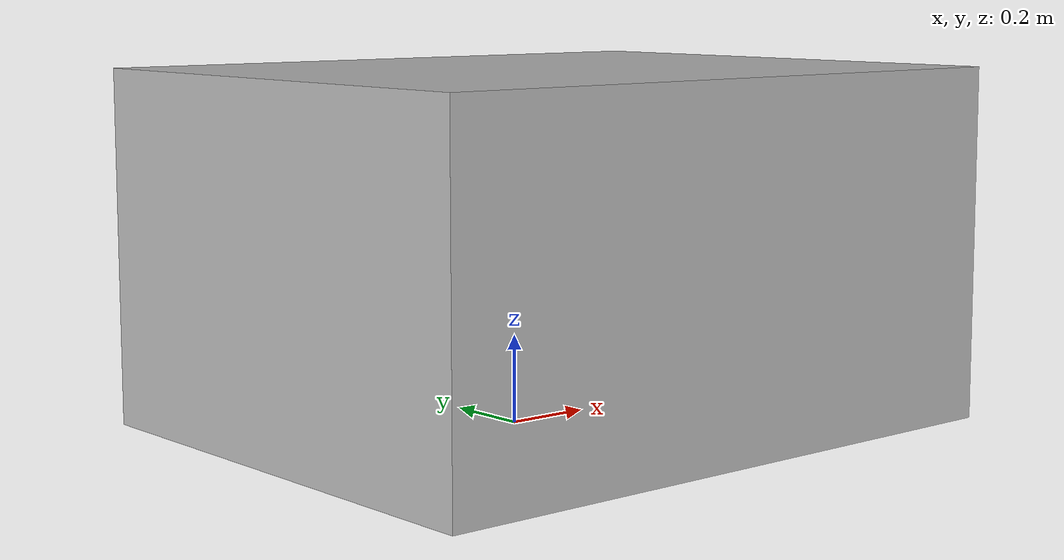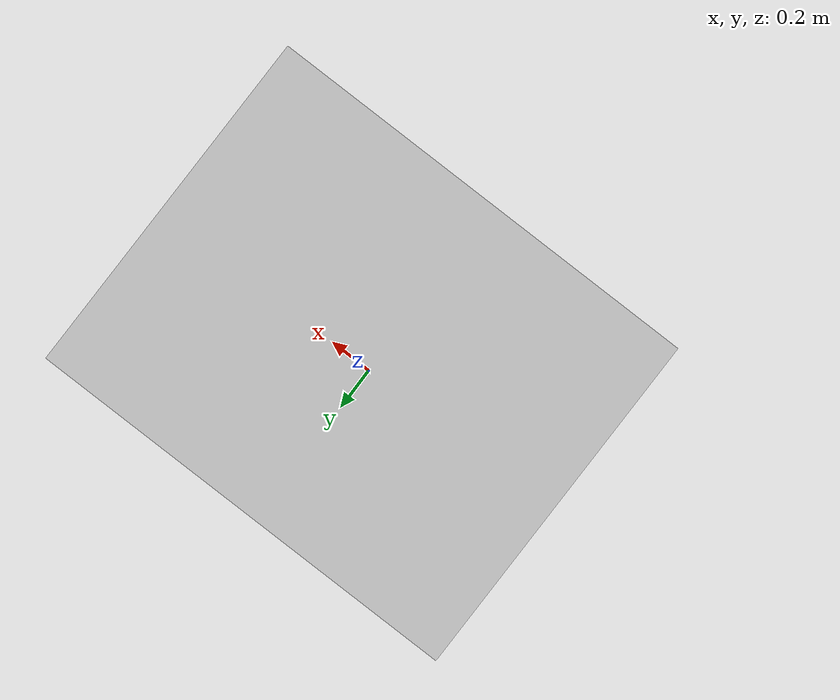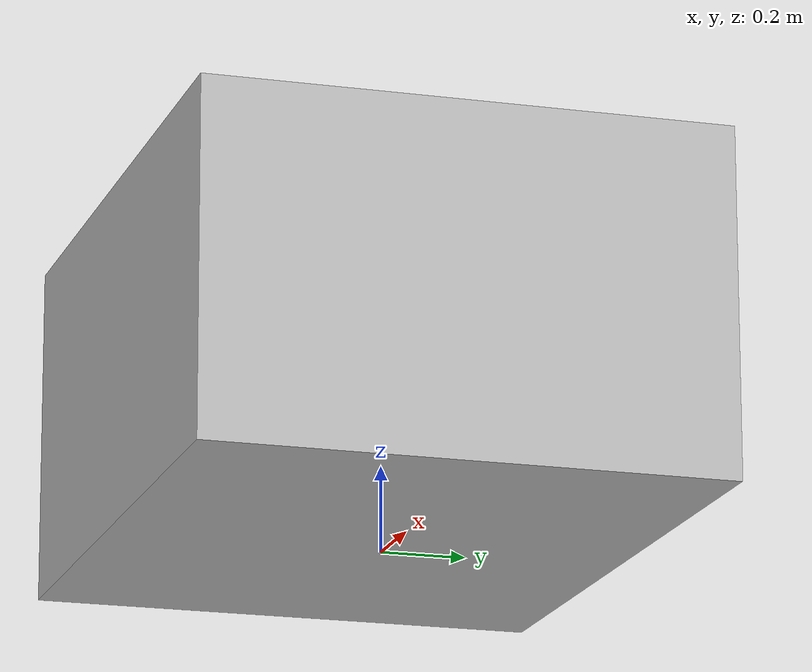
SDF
<?xml version="1.0" ?>
<sdf version="1.5">
  <model name='obs02'>
    <static>true</static>
    <link name="link">
      <collision name='collision'>
        <geometry>
          <mesh>
            <uri>model://obs02/mesh/Obs02.stl</uri>
            <scale>0.01 0.01 0.01</scale>
          </mesh>
        </geometry>
      </collision>

      <visual name='visual'>
        <geometry>
          <mesh>
            <uri>model://obs02/mesh/Obs02.stl</uri>
            <scale>0.01 0.01 0.01</scale>
          </mesh>
        </geometry>
        <material>
          <script>
            <uri>model://obs02/materials/scripts</uri>
            <uri>model://obs02/materials/textures</uri>
            <name>buildMat/Tex2</name>
          </script>
        </material>
      </visual>
    </link>
  </model>
</sdf>
